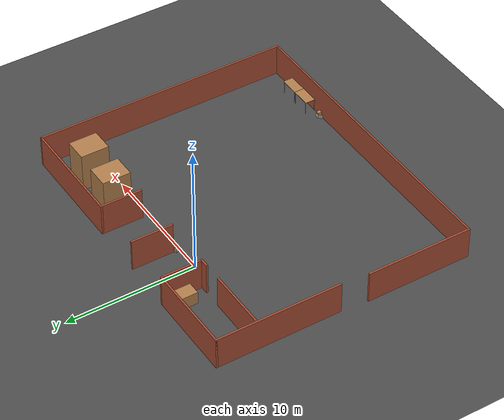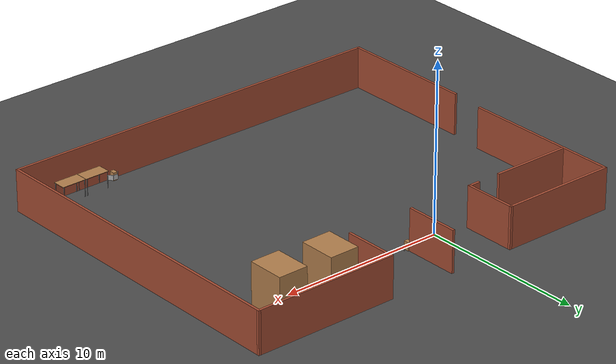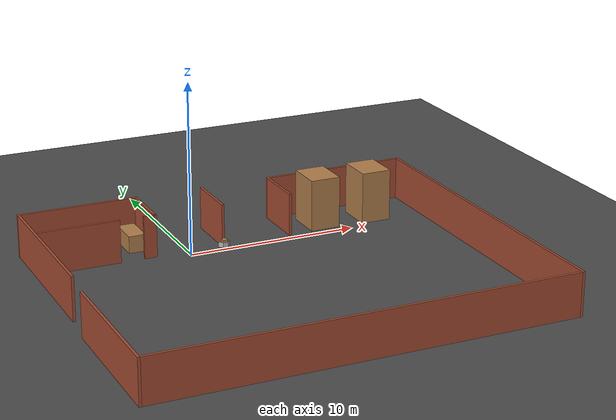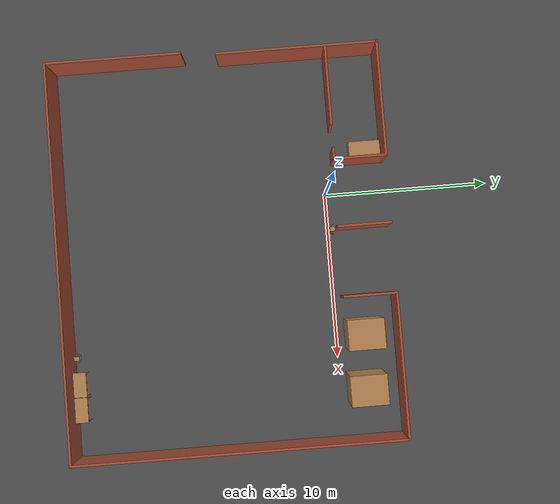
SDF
<sdf version="1.6">
 <world name="default">
  <model name="ground_plane">
   <static>1</static>
   <link name="link">
    <collision name="collision">
     <geometry><plane><normal>0 0 1</normal><size>100 100</size></plane></geometry>
     <surface><friction><ode><mu>100</mu><mu2>50</mu2></ode></friction></surface>
    </collision>
    <visual name="visual">
     <cast_shadows>0</cast_shadows>
     <geometry><plane><normal>0 0 1</normal><size>100 100</size></plane></geometry>
     <material>
      <script><uri>file://media/materials/scripts/gazebo.material</uri><name>Gazebo/DarkGrey</name></script>
     </material>
    </visual>
   </link>
  </model>
  <model name="enviroment_1">
   <pose>2.98612 -6.2457 0 0 -0 0</pose>
   <link name="Wall_0">
    <collision name="Wall_0_Collision">
     <geometry><box><size>8.25 0.15 2.5</size></box></geometry>
     <pose>0 0 1.25 0 -0 0</pose>
    </collision>
    <visual name="Wall_0_Visual">
     <pose>0 0 1.25 0 -0 0</pose>
     <geometry><box><size>8.25 0.15 2.5</size></box></geometry>
     <material>
      <script><uri>file://media/materials/scripts/gazebo.material</uri><name>Gazebo/Bricks</name></script>
      <ambient>1 1 1 1</ambient>
     </material>
     <meta><layer>0</layer></meta>
    </visual>
    <pose>-11.925 -5.8997 0 0 -0 -1.5708</pose>
   </link>
   <link name="Wall_1">
    <collision name="Wall_1_Collision">
     <geometry><box><size>24 0.15 2.5</size></box></geometry>
     <pose>0 0 1.25 0 -0 0</pose>
    </collision>
    <visual name="Wall_1_Visual">
     <pose>0 0 1.25 0 -0 0</pose>
     <geometry><box><size>24 0.15 2.5</size></box></geometry>
     <material>
      <script><uri>file://media/materials/scripts/gazebo.material</uri><name>Gazebo/Bricks</name></script>
      <ambient>1 1 1 1</ambient>
     </material>
     <meta><layer>0</layer></meta>
    </visual>
    <pose>0 -9.9497 0 0 -0 0</pose>
   </link>
   <link name="Wall_11">
    <collision name="Wall_11_Collision">
     <geometry><box><size>3.25 0.15 2.5</size></box></geometry>
     <pose>0 0 1.25 0 -0 0</pose>
    </collision>
    <visual name="Wall_11_Visual">
     <pose>0 0 1.25 0 -0 0</pose>
     <geometry><box><size>3.25 0.15 2.5</size></box></geometry>
     <material>
      <script><uri>file://media/materials/scripts/gazebo.material</uri><name>Gazebo/Bricks</name></script>
      <ambient>1 1 1 1</ambient>
     </material>
     <meta><layer>0</layer></meta>
    </visual>
    <pose>-0.85303 8.33887 0 0 -0 1.5708</pose>
   </link>
   <link name="Wall_13">
    <collision name="Wall_13_Collision">
     <geometry><box><size>4.75 0.15 2.5</size></box></geometry>
     <pose>0 0 1.25 0 -0 0</pose>
    </collision>
    <visual name="Wall_13_Visual">
     <pose>0 0 1.25 0 -0 0</pose>
     <geometry><box><size>4.75 0.15 2.5</size></box></geometry>
     <material>
      <script><uri>file://media/materials/scripts/gazebo.material</uri><name>Gazebo/Bricks</name></script>
      <ambient>1 1 1 1</ambient>
     </material>
     <meta><layer>0</layer></meta>
    </visual>
    <pose>-9.29736 6.8497 0 0 -0 3.14159</pose>
   </link>
   <link name="Wall_2">
    <collision name="Wall_2_Collision">
     <geometry><box><size>20 0.15 2.5</size></box></geometry>
     <pose>0 0 1.25 0 -0 0</pose>
    </collision>
    <visual name="Wall_2_Visual">
     <pose>0 0 1.25 0 -0 0</pose>
     <geometry><box><size>20 0.15 2.5</size></box></geometry>
     <material>
      <script><uri>file://media/materials/scripts/gazebo.material</uri><name>Gazebo/Bricks</name></script>
      <ambient>1 1 1 1</ambient>
     </material>
     <meta><layer>0</layer></meta>
    </visual>
    <pose>11.925 -0.024702 0 0 -0 1.5708</pose>
   </link>
   <link name="Wall_3">
    <collision name="Wall_3_Collision">
     <geometry><box><size>8.75 0.15 2.5</size></box></geometry>
     <pose>0 0 1.25 0 -0 0</pose>
    </collision>
    <visual name="Wall_3_Visual">
     <pose>0 0 1.25 0 -0 0</pose>
     <geometry><box><size>8.75 0.15 2.5</size></box></geometry>
     <material>
      <script><uri>file://media/materials/scripts/gazebo.material</uri><name>Gazebo/Bricks</name></script>
      <ambient>1 1 1 1</ambient>
     </material>
     <meta><layer>0</layer></meta>
    </visual>
    <pose>7.625 9.9003 0 0 -0 3.14159</pose>
   </link>
   <link name="Wall_4">
    <collision name="Wall_4_Collision">
     <geometry><box><size>3.25 0.15 2.5</size></box></geometry>
     <pose>0 0 1.25 0 -0 0</pose>
    </collision>
    <visual name="Wall_4_Visual">
     <pose>0 0 1.25 0 -0 0</pose>
     <geometry><box><size>3.25 0.15 2.5</size></box></geometry>
     <material>
      <script><uri>file://media/materials/scripts/gazebo.material</uri><name>Gazebo/Bricks</name></script>
      <ambient>1 1 1 1</ambient>
     </material>
     <meta><layer>0</layer></meta>
    </visual>
    <pose>3.325 8.3503 0 0 -0 -1.5708</pose>
   </link>
   <link name="Wall_6">
    <collision name="Wall_6_Collision">
     <geometry><box><size>0.75 0.15 2.5</size></box></geometry>
     <pose>0 0 1.25 0 -0 0</pose>
    </collision>
    <visual name="Wall_6_Visual">
     <pose>0 0 1.25 0 -0 0</pose>
     <geometry><box><size>0.75 0.15 2.5</size></box></geometry>
     <material>
      <script><uri>file://media/materials/scripts/gazebo.material</uri><name>Gazebo/Bricks</name></script>
      <ambient>1 1 1 1</ambient>
     </material>
     <meta><layer>0</layer></meta>
    </visual>
    <pose>-5.17649 6.8497 0 0 -0 0</pose>
   </link>
   <link name="Wall_7">
    <collision name="Wall_7_Collision">
     <geometry><box><size>3.25 0.15 2.5</size></box></geometry>
     <pose>0 0 1.25 0 -0 0</pose>
    </collision>
    <visual name="Wall_7_Visual">
     <pose>0 0 1.25 0 -0 0</pose>
     <geometry><box><size>3.25 0.15 2.5</size></box></geometry>
     <material>
      <script><uri>file://media/materials/scripts/gazebo.material</uri><name>Gazebo/Bricks</name></script>
      <ambient>1 1 1 1</ambient>
     </material>
     <meta><layer>0</layer></meta>
    </visual>
    <pose>-4.87649 8.3997 0 0 -0 1.5708</pose>
   </link>
   <link name="Wall_8">
    <collision name="Wall_8_Collision">
     <geometry><box><size>7 0.15 2.5</size></box></geometry>
     <pose>0 0 1.25 0 -0 0</pose>
    </collision>
    <visual name="Wall_8_Visual">
     <pose>0 0 1.25 0 -0 0</pose>
     <geometry><box><size>7 0.15 2.5</size></box></geometry>
     <material>
      <script><uri>file://media/materials/scripts/gazebo.material</uri><name>Gazebo/Bricks</name></script>
      <ambient>1 1 1 1</ambient>
     </material>
     <meta><layer>0</layer></meta>
    </visual>
    <pose>-8.30149 9.9497 0 0 -0 3.14159</pose>
   </link>
   <link name="Wall_9">
    <collision name="Wall_9_Collision">
     <geometry><box><size>9.75 0.15 2.5</size></box></geometry>
     <pose>0 0 1.25 0 -0 0</pose>
    </collision>
    <visual name="Wall_9_Visual">
     <pose>0 0 1.25 0 -0 0</pose>
     <geometry><box><size>9.75 0.15 2.5</size></box></geometry>
     <material>
      <script><uri>file://media/materials/scripts/gazebo.material</uri><name>Gazebo/Bricks</name></script>
      <ambient>1 1 1 1</ambient>
     </material>
     <meta><layer>0</layer></meta>
    </visual>
    <pose>-11.7265 5.1497 0 0 -0 -1.5708</pose>
   </link>
   <static>1</static>
  </model>
  <model name="unit_box_clone_4">
   <pose>8.58359 1.61174 1.53204 2e-06 -0 3.1e-05</pose>
   <link name="link">
    <inertial>
     <mass>1</mass>
     <inertia>
      <ixx>0.166667</ixx>
      <ixy>0</ixy>
      <ixz>0</ixz>
      <iyy>0.166667</iyy>
      <iyz>0</iyz>
      <izz>0.166667</izz>
     </inertia>
    </inertial>
    <collision name="collision"><geometry><box><size>1.78607 2.17889 3.06409</size></box></geometry></collision>
    <visual name="visual">
     <geometry><box><size>1.78607 2.17889 3.06409</size></box></geometry>
     <material>
      <script><name>Gazebo/Wood</name><uri>file://media/materials/scripts/gazebo.material</uri></script>
     </material>
    </visual>
   </link>
  </model>
  <model name="unit_box_clone_5">
   <pose>11.8265 1.51637 1.53204 -2e-06 0 0.000235</pose>
   <link name="link">
    <inertial>
     <mass>1</mass>
     <inertia>
      <ixx>0.166667</ixx>
      <ixy>0</ixy>
      <ixz>0</ixz>
      <iyy>0.166667</iyy>
      <iyz>0</iyz>
      <izz>0.166667</izz>
     </inertia>
    </inertial>
    <collision name="collision"><geometry><box><size>1.78607 2.17889 3.06409</size></box></geometry></collision>
    <visual name="visual">
     <geometry><box><size>1.78607 2.17889 3.06409</size></box></geometry>
     <material>
      <script><name>Gazebo/Wood</name><uri>file://media/materials/scripts/gazebo.material</uri></script>
     </material>
    </visual>
   </link>
  </model>
  <model name="table">
   <static>1</static>
   <link name="link">
    <collision name="surface">
     <pose>0 0 1 0 -0 0</pose>
     <geometry><box><size>1.5 0.8 0.03</size></box></geometry>
     <surface><friction><ode><mu>0.6</mu><mu2>0.6</mu2></ode></friction></surface>
    </collision>
    <visual name="visual1">
     <pose>0 0 1 0 -0 0</pose>
     <geometry><box><size>1.5 0.8 0.03</size></box></geometry>
     <material>
      <script><uri>file://media/materials/scripts/gazebo.material</uri><name>Gazebo/Wood</name></script>
     </material>
    </visual>
    <collision name="front_left_leg">
     <pose>0.68 0.38 0.5 0 -0 0</pose>
     <geometry><cylinder><radius>0.02</radius><length>1</length></cylinder></geometry>
    </collision>
    <visual name="front_left_leg">
     <pose>0.68 0.38 0.5 0 -0 0</pose>
     <geometry><cylinder><radius>0.02</radius><length>1</length></cylinder></geometry>
     <material>
      <script><uri>file://media/materials/scripts/gazebo.material</uri><name>Gazebo/Grey</name></script>
     </material>
    </visual>
    <collision name="front_right_leg">
     <pose>0.68 -0.38 0.5 0 -0 0</pose>
     <geometry><cylinder><radius>0.02</radius><length>1</length></cylinder></geometry>
    </collision>
    <visual name="front_right_leg">
     <pose>0.68 -0.38 0.5 0 -0 0</pose>
     <geometry><cylinder><radius>0.02</radius><length>1</length></cylinder></geometry>
     <material>
      <script><uri>file://media/materials/scripts/gazebo.material</uri><name>Gazebo/Grey</name></script>
     </material>
    </visual>
    <collision name="back_right_leg">
     <pose>-0.68 -0.38 0.5 0 -0 0</pose>
     <geometry><cylinder><radius>0.02</radius><length>1</length></cylinder></geometry>
    </collision>
    <visual name="back_right_leg">
     <pose>-0.68 -0.38 0.5 0 -0 0</pose>
     <geometry><cylinder><radius>0.02</radius><length>1</length></cylinder></geometry>
     <material>
      <script><uri>file://media/materials/scripts/gazebo.material</uri><name>Gazebo/Grey</name></script>
     </material>
    </visual>
    <collision name="back_left_leg">
     <pose>-0.68 0.38 0.5 0 -0 0</pose>
     <geometry><cylinder><radius>0.02</radius><length>1</length></cylinder></geometry>
    </collision>
    <visual name="back_left_leg">
     <pose>-0.68 0.38 0.5 0 -0 0</pose>
     <geometry><cylinder><radius>0.02</radius><length>1</length></cylinder></geometry>
     <material>
      <script><uri>file://media/materials/scripts/gazebo.material</uri><name>Gazebo/Grey</name></script>
     </material>
    </visual>
   </link>
   <pose>10.3967 -15.7211 0 0 -0 0</pose>
  </model>
  <model name="table_0">
   <static>1</static>
   <link name="link">
    <collision name="surface">
     <pose>0 0 1 0 -0 0</pose>
     <geometry><box><size>1.5 0.8 0.03</size></box></geometry>
     <surface><friction><ode><mu>0.6</mu><mu2>0.6</mu2></ode></friction></surface>
    </collision>
    <visual name="visual1">
     <pose>0 0 1 0 -0 0</pose>
     <geometry><box><size>1.5 0.8 0.03</size></box></geometry>
     <material>
      <script><uri>file://media/materials/scripts/gazebo.material</uri><name>Gazebo/Wood</name></script>
     </material>
    </visual>
    <collision name="front_left_leg">
     <pose>0.68 0.38 0.5 0 -0 0</pose>
     <geometry><cylinder><radius>0.02</radius><length>1</length></cylinder></geometry>
    </collision>
    <visual name="front_left_leg">
     <pose>0.68 0.38 0.5 0 -0 0</pose>
     <geometry><cylinder><radius>0.02</radius><length>1</length></cylinder></geometry>
     <material>
      <script><uri>file://media/materials/scripts/gazebo.material</uri><name>Gazebo/Grey</name></script>
     </material>
    </visual>
    <collision name="front_right_leg">
     <pose>0.68 -0.38 0.5 0 -0 0</pose>
     <geometry><cylinder><radius>0.02</radius><length>1</length></cylinder></geometry>
    </collision>
    <visual name="front_right_leg">
     <pose>0.68 -0.38 0.5 0 -0 0</pose>
     <geometry><cylinder><radius>0.02</radius><length>1</length></cylinder></geometry>
     <material>
      <script><uri>file://media/materials/scripts/gazebo.material</uri><name>Gazebo/Grey</name></script>
     </material>
    </visual>
    <collision name="back_right_leg">
     <pose>-0.68 -0.38 0.5 0 -0 0</pose>
     <geometry><cylinder><radius>0.02</radius><length>1</length></cylinder></geometry>
    </collision>
    <visual name="back_right_leg">
     <pose>-0.68 -0.38 0.5 0 -0 0</pose>
     <geometry><cylinder><radius>0.02</radius><length>1</length></cylinder></geometry>
     <material>
      <script><uri>file://media/materials/scripts/gazebo.material</uri><name>Gazebo/Grey</name></script>
     </material>
    </visual>
    <collision name="back_left_leg">
     <pose>-0.68 0.38 0.5 0 -0 0</pose>
     <geometry><cylinder><radius>0.02</radius><length>1</length></cylinder></geometry>
    </collision>
    <visual name="back_left_leg">
     <pose>-0.68 0.38 0.5 0 -0 0</pose>
     <geometry><cylinder><radius>0.02</radius><length>1</length></cylinder></geometry>
     <material>
      <script><uri>file://media/materials/scripts/gazebo.material</uri><name>Gazebo/Grey</name></script>
     </material>
    </visual>
   </link>
   <pose>11.9134 -15.7244 0 0 -0 0</pose>
  </model>
  <model name="Aruco tag100">
   <static>1</static>
   <link name="robot_link">
    <visual name="body_visual">
     <geometry><box><size>0.3 0.3 0.02</size></box></geometry>
     <material>
      <script><uri>model://tag_100/materials/scripts/tag.material</uri><name>aruco_tag_100</name></script>
     </material>
    </visual>
   </link>
   <pose>2.13797 0.140124 0.2 1.57 -0 0</pose>
  </model>
  <model name="Aruco tag100_clone">
   <static>1</static>
   <link name="robot_link">
    <visual name="body_visual">
     <geometry><box><size>0.3 0.3 0.02</size></box></geometry>
     <material>
      <script><uri>model://tag_100/materials/scripts/tag.material</uri><name>aruco_tag_100</name></script>
     </material>
    </visual>
   </link>
   <pose>1.89484 0.266603 0.2 1.57028 -0.000603 -0.96</pose>
  </model>
  <model name="Aruco tag100_clone_clone">
   <static>1</static>
   <link name="robot_link">
    <visual name="body_visual">
     <geometry><box><size>0.3 0.3 0.02</size></box></geometry>
     <material>
      <script><uri>model://tag_100/materials/scripts/tag.material</uri><name>aruco_tag_100</name></script>
     </material>
    </visual>
   </link>
   <pose>2.38303 0.266773 0.2 1.57028 -0.000603 0.96</pose>
  </model>
  <model name="Support_box_wood_clone">
   <link name="link">
    <inertial>
     <mass>0.0406949</mass>
     <inertia>
      <ixx>0.00114102</ixx>
      <ixy>0</ixy>
      <ixz>0</ixz>
      <iyy>0.00102768</iyy>
      <iyz>0</iyz>
      <izz>0.000581951</izz>
     </inertia>
    </inertial>
    <pose>0.062754 0.860403 -0.243846 0 -0 0</pose>
    <visual name="visual">
     <geometry><box><size>0.252854 0.320175 0.483682</size></box></geometry>
     <material>
      <script><name>Gazebo/Wood</name><uri>file://media/materials/scripts/gazebo.material</uri></script>
      <shader type="vertex"><normal_map>__default__</normal_map></shader>
      <ambient>0.3 0.3 0.3 1</ambient>
      <diffuse>0.7 0.7 0.7 1</diffuse>
      <specular>0.01 0.01 0.01 1</specular>
      <emissive>0 0 0 1</emissive>
     </material>
    </visual>
    <visual name="ModelPreview_4::link::visual_1">
     <geometry><box><size>0.252854 0.320175 0.483682</size></box></geometry>
     <material>
      <script><name>Gazebo/Wood</name><uri>file://media/materials/scripts/gazebo.material</uri></script>
      <shader type="vertex"><normal_map>__default__</normal_map></shader>
      <ambient>0.3 0.3 0.3 1</ambient>
      <diffuse>0.7 0.7 0.7 1</diffuse>
      <specular>0.01 0.01 0.01 1</specular>
      <emissive>0 0 0 1</emissive>
     </material>
    </visual>
    <collision name="collision">
     <geometry><box><size>0.262854 0.320175 0.483683</size></box></geometry>
     <surface>
      <friction>
       <ode><mu>1</mu><mu2>1</mu2><fdir1>0 0 0</fdir1><slip1>0</slip1><slip2>0</slip2></ode>
       <torsional>
        <coefficient>1</coefficient>
        <patch_radius>0</patch_radius>
        <surface_radius>0</surface_radius>
        <use_patch_radius>1</use_patch_radius>
        <ode><slip>0</slip></ode>
       </torsional>
      </friction>
      <bounce><restitution_coefficient>0</restitution_coefficient><threshold>1e+06</threshold></bounce>
      <contact>
       <collide_without_contact>0</collide_without_contact>
       <collide_without_contact_bitmask>1</collide_without_contact_bitmask>
       <collide_bitmask>1</collide_bitmask>
       <ode>
        <soft_cfm>0</soft_cfm>
        <soft_erp>0.2</soft_erp>
        <kp>1e+13</kp>
        <kd>1</kd>
        <max_vel>0.01</max_vel>
        <min_depth>0</min_depth>
       </ode>
       <bullet>
        <split_impulse>1</split_impulse>
        <split_impulse_penetration_threshold>-0.01</split_impulse_penetration_threshold>
        <soft_cfm>0</soft_cfm>
        <soft_erp>0.2</soft_erp>
        <kp>1e+13</kp>
        <kd>1</kd>
       </bullet>
      </contact>
     </surface>
    </collision>
   </link>
   <static>0</static>
   <pose>2.06843 -0.552277 0.485692 -7e-06 -0 3e-06</pose>
  </model>
  <model name="Support_box_wood_clone_clone">
   <link name="link">
    <inertial>
     <mass>0.0406949</mass>
     <inertia>
      <ixx>0.00114102</ixx>
      <ixy>0</ixy>
      <ixz>0</ixz>
      <iyy>0.00102768</iyy>
      <iyz>0</iyz>
      <izz>0.000581951</izz>
     </inertia>
    </inertial>
    <pose>0.062754 0.860403 -0.243846 0 -0 0</pose>
    <visual name="visual">
     <geometry><box><size>0.252854 0.320175 0.483682</size></box></geometry>
     <material>
      <script><name>Gazebo/Wood</name><uri>file://media/materials/scripts/gazebo.material</uri></script>
      <shader type="vertex"><normal_map>__default__</normal_map></shader>
      <ambient>0.3 0.3 0.3 1</ambient>
      <diffuse>0.7 0.7 0.7 1</diffuse>
      <specular>0.01 0.01 0.01 1</specular>
      <emissive>0 0 0 1</emissive>
     </material>
    </visual>
    <visual name="ModelPreview_4::link::visual_1">
     <geometry><box><size>0.252854 0.320175 0.483682</size></box></geometry>
     <material>
      <script><name>Gazebo/Wood</name><uri>file://media/materials/scripts/gazebo.material</uri></script>
      <shader type="vertex"><normal_map>__default__</normal_map></shader>
      <ambient>0.3 0.3 0.3 1</ambient>
      <diffuse>0.7 0.7 0.7 1</diffuse>
      <specular>0.01 0.01 0.01 1</specular>
      <emissive>0 0 0 1</emissive>
     </material>
    </visual>
    <collision name="collision">
     <geometry><box><size>0.262854 0.320175 0.483683</size></box></geometry>
     <surface>
      <friction>
       <ode><mu>1</mu><mu2>1</mu2><fdir1>0 0 0</fdir1><slip1>0</slip1><slip2>0</slip2></ode>
       <torsional>
        <coefficient>1</coefficient>
        <patch_radius>0</patch_radius>
        <surface_radius>0</surface_radius>
        <use_patch_radius>1</use_patch_radius>
        <ode><slip>0</slip></ode>
       </torsional>
      </friction>
      <bounce><restitution_coefficient>0</restitution_coefficient><threshold>1e+06</threshold></bounce>
      <contact>
       <collide_without_contact>0</collide_without_contact>
       <collide_without_contact_bitmask>1</collide_without_contact_bitmask>
       <collide_bitmask>1</collide_bitmask>
       <ode>
        <soft_cfm>0</soft_cfm>
        <soft_erp>0.2</soft_erp>
        <kp>1e+13</kp>
        <kd>1</kd>
        <max_vel>0.01</max_vel>
        <min_depth>0</min_depth>
       </ode>
       <bullet>
        <split_impulse>1</split_impulse>
        <split_impulse_penetration_threshold>-0.01</split_impulse_penetration_threshold>
        <soft_cfm>0</soft_cfm>
        <soft_erp>0.2</soft_erp>
        <kp>1e+13</kp>
        <kd>1</kd>
       </bullet>
      </contact>
     </surface>
    </collision>
   </link>
   <static>0</static>
   <pose>8.77777 -16.8207 0.485688 0 0 -9.8e-05</pose>
  </model>
  <model name="Aruco tag102">
   <static>1</static>
   <link name="robot_link">
    <visual name="body_visual">
     <geometry><box><size>0.3 0.3 0.02</size></box></geometry>
     <material>
      <script><uri>model://tag_102/materials/scripts/tag.material</uri><name>aruco_tag_102</name></script>
     </material>
    </visual>
   </link>
   <pose>8.84643 -15.7937 0.2 1.57 -0 0</pose>
  </model>
  <model name="Aruco tag102_clone">
   <static>1</static>
   <link name="robot_link">
    <visual name="body_visual">
     <geometry><box><size>0.3 0.3 0.02</size></box></geometry>
     <material>
      <script><uri>model://tag_102/materials/scripts/tag.material</uri><name>aruco_tag_102</name></script>
     </material>
    </visual>
   </link>
   <pose>8.59529 -15.9151 0.2 1.57 -0 0.909999</pose>
  </model>
  <model name="Aruco tag102_clone_clone">
   <static>1</static>
   <link name="robot_link">
    <visual name="body_visual">
     <geometry><box><size>0.3 0.3 0.02</size></box></geometry>
     <material>
      <script><uri>model://tag_102/materials/scripts/tag.material</uri><name>aruco_tag_102</name></script>
     </material>
    </visual>
   </link>
   <pose>9.09641 -15.916 0.2 1.57 -0 -0.909999</pose>
  </model>
  <model name="unit_box_1">
   <link name="link">
    <inertial>
     <mass>4.46992</mass>
     <inertia><ixx>1.7353</ixx><ixy>0</ixy><ixz>0</ixz><iyy>0.744987</iyy><iyz>0</iyz><izz>1.7353</izz></inertia>
    </inertial>
    <visual name="visual">
     <geometry><box><size>1 1.91274 1</size></box></geometry>
     <material>
      <script><name>Gazebo/Wood</name><uri>file://media/materials/scripts/gazebo.material</uri></script>
     </material>
    </visual>
    <collision name="collision">
     <geometry><box><size>1 1.91274 1</size></box></geometry>
     <surface>
      <friction>
       <ode><mu>1</mu><mu2>1</mu2><fdir1>0 0 0</fdir1><slip1>0</slip1><slip2>0</slip2></ode>
       <torsional>
        <coefficient>1</coefficient>
        <patch_radius>0</patch_radius>
        <surface_radius>0</surface_radius>
        <use_patch_radius>1</use_patch_radius>
        <ode><slip>0</slip></ode>
       </torsional>
      </friction>
      <bounce><restitution_coefficient>0</restitution_coefficient><threshold>1e+06</threshold></bounce>
      <contact>
       <collide_without_contact>0</collide_without_contact>
       <collide_without_contact_bitmask>1</collide_without_contact_bitmask>
       <collide_bitmask>1</collide_bitmask>
       <ode>
        <soft_cfm>0</soft_cfm>
        <soft_erp>0.2</soft_erp>
        <kp>1e+13</kp>
        <kd>1</kd>
        <max_vel>0.01</max_vel>
        <min_depth>0</min_depth>
       </ode>
       <bullet>
        <split_impulse>1</split_impulse>
        <split_impulse_penetration_threshold>-0.01</split_impulse_penetration_threshold>
        <soft_cfm>0</soft_cfm>
        <soft_erp>0.2</soft_erp>
        <kp>1e+13</kp>
        <kd>1</kd>
       </bullet>
      </contact>
     </surface>
    </collision>
   </link>
   <static>0</static>
   <pose>-2.58138 2.6093 0.5 0 -0 1e-06</pose>
  </model>
 </world>
</sdf>
